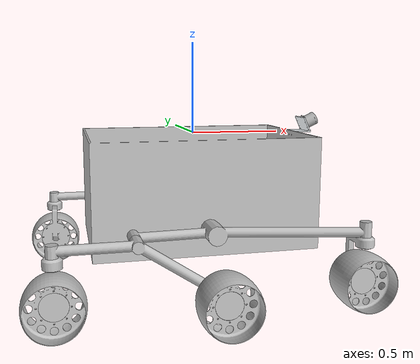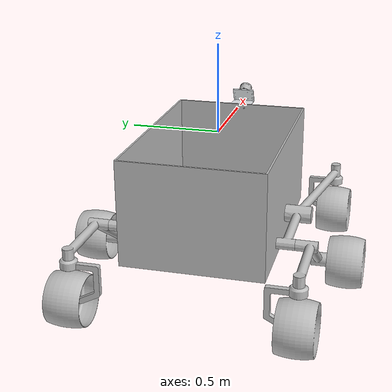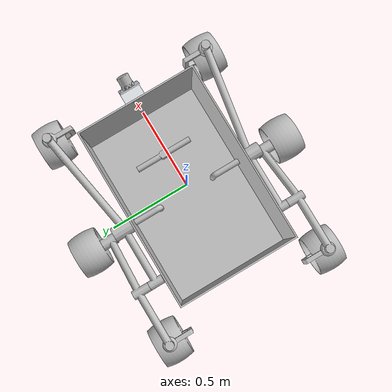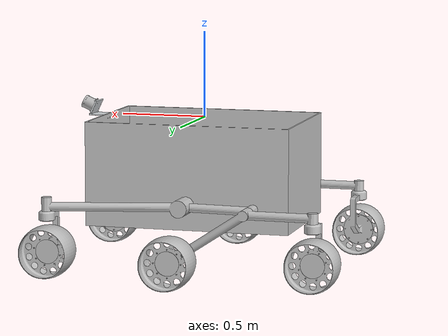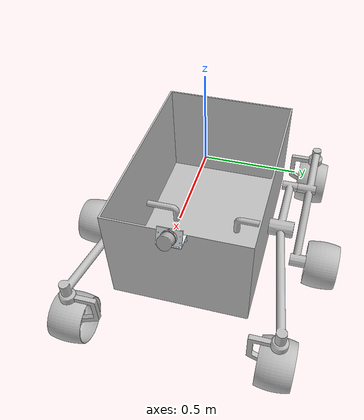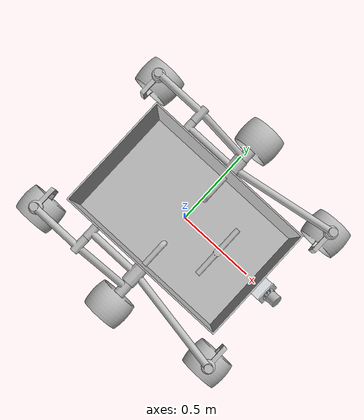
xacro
<?xml version="1.0" encoding="utf-8"?>
<robot xmlns:xacro="http://www.ros.org/wiki/xacro"  name="MarsRover">

  <xacro:include filename="$(find mars_rover_2)/urdf/MarsRover.gazebo" />
  <xacro:property name="PI" value="3.141592654" />
  <xacro:property name="LidarAngle" value="${PI/180*0}" />
  <xacro:property name="LidarName" value="PandarQT" />
  <xacro:property name="LidarDataTopicName" value="PandarQT_Data" />
  <xacro:property name="LidarHz" value="10" />
  <xacro:property name="LidarLasers" value="64" />
  <xacro:property name="LidarSamples" value="600" />
  <xacro:property name="LidarBeamVisual" value="false" />

  <link
    name="body">
    <inertial>
      <origin
        xyz="-0.00020734 5.5511E-16 -0.3822"
        rpy="0 0 0" />
      <mass
        value="32.918" />
      <inertia
        ixx="4.4731"
        ixy="2.198E-15"
        ixz="-0.00091963"
        iyy="7.3964"
        iyz="-5.1204E-16"
        izz="9.2915" />
    </inertial>
    <visual>
      <origin
        xyz="0 0 0"
        rpy="0 0 0" />
      <geometry>
        <mesh
          filename="package://mars_rover_2/meshes/rover/Body.dae" />
      </geometry>
      <material
        name="">
        <color
          rgba="0.75294 0.75294 0.75294 1" />
      </material>
    </visual>
    <collision>
      <origin
        xyz="0 0 0"
        rpy="0 0 0" />
      <geometry>
        <mesh filename="package://mars_rover_2/meshes/rover/Body.dae" />
      </geometry>
    </collision>
  </link>

  <link
    name="LiDARBodyCon">
    <inertial>
      <origin
        xyz="-0.0090907 0 -0.05047"
        rpy="0 0 0" />
      <mass
        value="0.2293" />
      <inertia
        ixx="0.0005399"
        ixy="-3.1405E-20"
        ixz="-3.3205E-05"
        iyy="0.00023526"
        iyz="1.3103E-20"
        izz="0.00035987" />
    </inertial>
    <visual>
      <origin
        xyz="0 0 0"
        rpy="0 0 0" />
      <geometry>
        <mesh
          filename="package://mars_rover_2/meshes/rover/LiDARBodyCon.dae" />
      </geometry>
      <material
        name="">
        <color
          rgba="0.89804 0.91765 0.92941 1" />
      </material>
    </visual>
    <collision>
      <origin
        xyz="0 0 0"
        rpy="0 0 0" />
      <geometry>
        <mesh
          filename="package://mars_rover_2/meshes/rover/LiDARBodyCon.dae" />
      </geometry>
    </collision>
  </link>
  <joint
    name="f_Body_LiDARBodyCon"
    type="fixed">
    <origin
      xyz="0.6825 0 0.004"
      rpy="0 1.1345 0" />
    <parent
      link="body" />
    <child
      link="LiDARBodyCon" />
    <axis
      xyz="0 0 0" />
  </joint>
  <link
    name="LiDARSupport">
    <inertial>
      <origin
        xyz="-0.03997 0 1.1102E-16"
        rpy="0 0 0" />
      <mass
        value="0.23629" />
      <inertia
        ixx="0.00032757"
        ixy="-1.5161E-19"
        ixz="1.3553E-20"
        iyy="0.00014519"
        iyz="7.7448E-21"
        izz="0.00047027" />
    </inertial>
    <visual>
      <origin
        xyz="0 0 0"
        rpy="0 0 0" />
      <geometry>
        <mesh
          filename="package://mars_rover_2/meshes/rover/LiDARSupport.dae" />
      </geometry>
      <material
        name="">
        <color
          rgba="0.89804 0.91765 0.92941 1" />
      </material>
    </visual>
    <collision>
      <origin
        xyz="0 0 0"
        rpy="0 0 0" />
      <geometry>
        <mesh
          filename="package://mars_rover_2/meshes/rover/LiDARSupport.dae" />
      </geometry>
    </collision>
  </link>
  <joint
    name="c_LiDARBodyCon_LiDARSupport"
    type="fixed"><!--revolute-->
    <origin
      xyz="0 0 0"
      rpy="0 ${LidarAngle} 0" />
    <parent
      link="LiDARBodyCon" />
    <child
      link="LiDARSupport" />
    <axis
      xyz="0 -1 0" />
    <limit
      lower="0"
      upper="0"
      effort="0"
      velocity="0" />
  </joint>
  <link
    name="${LidarName}">
    <inertial>
      <origin
        xyz="-0.00012666 -9.4208E-09 -0.012924"
        rpy="0 0 0" />
      <mass
        value="0.47584" />
      <inertia
        ixx="0.00040759"
        ixy="-1.3958E-10"
        ixz="-1.3527E-06"
        iyy="0.00040186"
        iyz="-1.5768E-10"
        izz="0.0003397" />
    </inertial>
    <visual>
      <origin
        xyz="0 0 0"
        rpy="0 0 0" />
      <geometry>
        <mesh
          filename="package://mars_rover_2/meshes/rover/LiDAR.dae" />
      </geometry>
      <material
        name="">
        <color
          rgba="0.69804 0.69804 0.69804 1" />
      </material>
    </visual>
    <collision>
      <origin
        xyz="0 0 0"
        rpy="0 0 0" />
      <geometry>
        <mesh
          filename="package://mars_rover_2/meshes/rover/LiDAR.dae" />
      </geometry>
    </collision>
  </link>
  <joint
    name="f_LiDARSupport_LiDAR"
    type="fixed">
    <origin
      xyz="-0.0375 0 0.0544"
      rpy="0 0 0" />
    <parent
      link="LiDARSupport" />
    <child
      link="${LidarName}" />
    <axis
      xyz="0 0 0" />
  </joint>

  <link
    name="DiffBar">
    <inertial>
      <origin
        xyz="-2.3069E-08 1.8739E-07 0.043691"
        rpy="0 0 0" />
      <mass
        value="0.60001" />
      <inertia
        ixx="0.0056324"
        ixy="-1.0197E-09"
        ixz="-5.914E-10"
        iyy="0.0002223"
        iyz="-2.9455E-09"
        izz="0.0055642" />
    </inertial>
    <visual>
      <origin
        xyz="0 0 0"
        rpy="0 0 0" />
      <geometry>
        <mesh
          filename="package://mars_rover_2/meshes/rover/DiffBar.dae" />
      </geometry>
      <material
        name="">
        <color
          rgba="0.75294 0.75294 0.75294 1" />
      </material>
    </visual>
    <collision>
      <origin
        xyz="0 0 0"
        rpy="0 0 0" />
      <geometry>
        <mesh
          filename="package://mars_rover_2/meshes/rover/DiffBar.dae" />
      </geometry>
    </collision>
  </link>
  <joint
    name="c_Body_DiffBar"
    type="continuous">
    <origin
      xyz="0.3 0 -0.6"
      rpy="0 0 0" />
    <parent
      link="body" />
    <child
      link="DiffBar" />
    <axis
      xyz="0 0 -1" />
  </joint>

  <link
    name="RightMainRocket">
    <inertial>
      <origin
        xyz="0.11317 -0.083287 -0.0033099"
        rpy="0 0 0" />
      <mass
        value="3.9698" />
      <inertia
        ixx="0.029658"
        ixy="0.058353"
        ixz="-6.7156E-05"
        iyy="0.40048"
        iyz="0.0010399"
        izz="0.42705" />
    </inertial>
    <visual>
      <origin
        xyz="0 0 0"
        rpy="0 0 0" />
      <geometry>
        <mesh
          filename="package://mars_rover_2/meshes/rover/RightMainRocket.dae" />
      </geometry>
      <material
        name="">
        <color
          rgba="0.75294 0.75294 0.75294 1" />
      </material>
    </visual>
    <collision>
      <origin
        xyz="0 0 0"
        rpy="0 0 0" />
      <geometry>
        <mesh
          filename="package://mars_rover_2/meshes/rover/RightMainRocket.dae" />
      </geometry>
    </collision>
  </link>
  <joint
    name="c_Body_RightMainRocket"
    type="continuous">
    <origin
      xyz="0 -0.4 -0.455"
      rpy="0 0 0" />
    <parent
      link="body" />
    <child
      link="RightMainRocket" />
    <axis
      xyz="0 -1 0" />
  </joint>
  <link
    name="BogieRF">
    <inertial>
      <origin
        xyz="1.1102E-16 0.043694 -0.10834"
        rpy="0 0 0" />
      <mass
        value="0.97559" />
      <inertia
        ixx="0.012957"
        ixy="5.7596E-19"
        ixz="7.2649E-18"
        iyy="0.0096917"
        iyz="0.00058661"
        izz="0.0043433" />
    </inertial>
    <visual>
      <origin
        xyz="0 0 0"
        rpy="0 0 0" />
      <geometry>
        <mesh
          filename="package://mars_rover_2/meshes/rover/BogieRF.dae" />
      </geometry>
      <material
        name="">
        <color
          rgba="0.75294 0.75294 0.75294 1" />
      </material>
    </visual>
    <collision>
      <origin
        xyz="0 0 0"
        rpy="0 0 0" />
      <geometry>
        <mesh
          filename="package://mars_rover_2/meshes/rover/BogieRF.dae" />
      </geometry>
    </collision>
  </link>
  <joint
    name="c_RightMainRocket_BogieRF"
    type="continuous">
    <origin
      xyz="0.76252 -0.2 -0.035"
      rpy="0 0 0" />
    <parent
      link="RightMainRocket" />
    <child
      link="BogieRF" />
    <axis
      xyz="0 0 -1" />
  </joint>
  <link
    name="WheelRF">
    <inertial>
      <origin
        xyz="8.8818E-16 0 -2.3315E-15"
        rpy="0 0 0" />
      <mass
        value="0.78656" />
      <inertia
        ixx="0.009468"
        ixy="1.973E-20"
        ixz="-7.0807E-18"
        iyy="0.015284"
        iyz="-1.8111E-18"
        izz="0.009468" />
    </inertial>
    <visual>
      <origin
        xyz="0 0 0"
        rpy="0 0 0" />
      <geometry>
        <mesh
          filename="package://mars_rover_2/meshes/rover/WheelRF.dae" />
      </geometry>
      <material
        name="">
        <color
          rgba="0.75294 0.75294 0.75294 1" />
      </material>
    </visual>
    <collision>
      <origin
        xyz="0 0 0"
        rpy="0 0 0" />
      <geometry>
        <mesh
          filename="package://mars_rover_2/meshes/rover/WheelRF.dae" />
      </geometry>
    </collision>
  </link>
  <joint
    name="c_BogieRF_WheelRF"
    type="continuous">
    <origin
      xyz="0 0 -0.235"
      rpy="0 0 0" />
    <parent
      link="BogieRF" />
    <child
      link="WheelRF" />
    <axis
      xyz="0 1 0" />
  </joint>
  <link
    name="RightViceRocket">
    <inertial>
      <origin
        xyz="0.14469 -0.10519 -0.13316"
        rpy="0 0 0" />
      <mass
        value="3.1788" />
      <inertia
        ixx="0.057106"
        ixy="0.024643"
        ixz="0.091961"
        iyy="0.26287"
        iyz="-0.013339"
        izz="0.22749" />
    </inertial>
    <visual>
      <origin
        xyz="0 0 0"
        rpy="0 0 0" />
      <geometry>
        <mesh
          filename="package://mars_rover_2/meshes/rover/RightViceRocket.dae" />
      </geometry>
      <material
        name="">
        <color
          rgba="0.75294 0.75294 0.75294 1" />
      </material>
    </visual>
    <collision>
      <origin
        xyz="0 0 0"
        rpy="0 0 0" />
      <geometry>
        <mesh
          filename="package://mars_rover_2/meshes/rover/RightViceRocket.dae" />
      </geometry>
    </collision>
  </link>
  <joint
    name="c_RightMainRocket_RightViceRocket"
    type="continuous">
    <origin
      xyz="-0.4 -0.12 -0.005"
      rpy="0 0 0" />
    <parent
      link="RightMainRocket" />
    <child
      link="RightViceRocket" />
    <axis
      xyz="0 -1 0" />
  </joint>
  <link
    name="WheelRM">
    <inertial>
      <origin
        xyz="2.387E-15 -5.9952E-15 2.2204E-16"
        rpy="0 0 0" />
      <mass
        value="0.78656" />
      <inertia
        ixx="0.009468"
        ixy="6.6562E-22"
        ixz="2.2238E-18"
        iyy="0.015284"
        iyz="7.6463E-22"
        izz="0.009468" />
    </inertial>
    <visual>
      <origin
        xyz="0 0 0"
        rpy="0 0 0" />
      <geometry>
        <mesh
          filename="package://mars_rover_2/meshes/rover/WheelRM.dae" />
      </geometry>
      <material
        name="">
        <color
          rgba="0.75294 0.75294 0.75294 1" />
      </material>
    </visual>
    <collision>
      <origin
        xyz="0 0 0"
        rpy="0 0 0" />
      <geometry>
        <mesh
          filename="package://mars_rover_2/meshes/rover/WheelRM.dae" />
      </geometry>
    </collision>
  </link>
  <joint
    name="c_RightViceRocket_WheelRM"
    type="continuous">
    <origin
      xyz="0.4 -0.239 -0.265"
      rpy="0 0 0" />
    <parent
      link="RightViceRocket" />
    <child
      link="WheelRM" />
    <axis
      xyz="0 1 0" />
  </joint>
  <link
    name="BogieRR">
    <inertial>
      <origin
        xyz="0 0.043694 -0.10834"
        rpy="0 0 0" />
      <mass
        value="0.97559" />
      <inertia
        ixx="0.012957"
        ixy="1.5156E-18"
        ixz="5.1012E-18"
        iyy="0.0096917"
        iyz="0.00058661"
        izz="0.0043433" />
    </inertial>
    <visual>
      <origin
        xyz="0 0 0"
        rpy="0 0 0" />
      <geometry>
        <mesh
          filename="package://mars_rover_2/meshes/rover/BogieRR.dae" />
      </geometry>
      <material
        name="">
        <color
          rgba="0.75294 0.75294 0.75294 1" />
      </material>
    </visual>
    <collision>
      <origin
        xyz="0 0 0"
        rpy="0 0 0" />
      <geometry>
        <mesh
          filename="package://mars_rover_2/meshes/rover/BogieRR.dae" />
      </geometry>
    </collision>
  </link>
  <joint
    name="c_RightViceRocket_BogieRR"
    type="continuous">
    <origin
      xyz="-0.388 -0.08 -0.03"
      rpy="0 0 0" />
    <parent
      link="RightViceRocket" />
    <child
      link="BogieRR" />
    <axis
      xyz="0 0 -1" />
  </joint>
  <link
    name="WheelRR">
    <inertial>
      <origin
        xyz="2.4425E-15 2.2204E-16 4.4409E-16"
        rpy="0 0 0" />
      <mass
        value="0.78656" />
      <inertia
        ixx="0.009468"
        ixy="1.3111E-18"
        ixz="2.4375E-18"
        iyy="0.015284"
        iyz="-7.9413E-19"
        izz="0.009468" />
    </inertial>
    <visual>
      <origin
        xyz="0 0 0"
        rpy="0 0 0" />
      <geometry>
        <mesh
          filename="package://mars_rover_2/meshes/rover/WheelRR.dae" />
      </geometry>
      <material
        name="">
        <color
          rgba="0.75294 0.75294 0.75294 1" />
      </material>
    </visual>
    <collision>
      <origin
        xyz="0 0 0"
        rpy="0 0 0" />
      <geometry>
        <mesh
          filename="package://mars_rover_2/meshes/rover/WheelRR.dae" />
      </geometry>
    </collision>
  </link>
  <joint
    name="c_BogieRR_WheelRR"
    type="continuous">
    <origin
      xyz="0 0 -0.235"
      rpy="0 0 0" />
    <parent
      link="BogieRR" />
    <child
      link="WheelRR" />
    <axis
      xyz="0 1 0" />
  </joint>
  <link
    name="LeftMainRocket">
    <inertial>
      <origin
        xyz="0.11317 0.083287 -0.0033099"
        rpy="0 0 0" />
      <mass
        value="3.9698" />
      <inertia
        ixx="0.029658"
        ixy="-0.058353"
        ixz="-6.7156E-05"
        iyy="0.40048"
        iyz="-0.0010399"
        izz="0.42705" />
    </inertial>
    <visual>
      <origin
        xyz="0 0 0"
        rpy="0 0 0" />
      <geometry>
        <mesh
          filename="package://mars_rover_2/meshes/rover/LeftMainRocket.dae" />
      </geometry>
      <material
        name="">
        <color
          rgba="0.75294 0.75294 0.75294 1" />
      </material>
    </visual>
    <collision>
      <origin
        xyz="0 0 0"
        rpy="0 0 0" />
      <geometry>
        <mesh
          filename="package://mars_rover_2/meshes/rover/LeftMainRocket.dae" />
      </geometry>
    </collision>
  </link>
  <joint
    name="c_Body_LeftMainRocket"
    type="continuous">
    <origin
      xyz="0 0.4 -0.455"
      rpy="0 0 0" />
    <parent
      link="body" />
    <child
      link="LeftMainRocket" />
    <axis
      xyz="0 1 0" />
  </joint>
  <link
    name="BogieLF">
    <inertial>
      <origin
        xyz="-1.0103E-14 -0.043694 -0.10834"
        rpy="0 0 0" />
      <mass
        value="0.97559" />
      <inertia
        ixx="0.012957"
        ixy="-7.4927E-16"
        ixz="-1.4026E-16"
        iyy="0.0096917"
        iyz="-0.00058661"
        izz="0.0043433" />
    </inertial>
    <visual>
      <origin
        xyz="0 0 0"
        rpy="0 0 0" />
      <geometry>
        <mesh
          filename="package://mars_rover_2/meshes/rover/BogieLF.dae" />
      </geometry>
      <material
        name="">
        <color
          rgba="0.75294 0.75294 0.75294 1" />
      </material>
    </visual>
    <collision>
      <origin
        xyz="0 0 0"
        rpy="0 0 0" />
      <geometry>
        <mesh
          filename="package://mars_rover_2/meshes/rover/BogieLF.dae" />
      </geometry>
    </collision>
  </link>
  <joint
    name="c_LeftMainRocket_BogieLF"
    type="continuous">
    <origin
      xyz="0.76252 0.2 -0.035"
      rpy="0 0 0" />
    <parent
      link="LeftMainRocket" />
    <child
      link="BogieLF" />
    <axis
      xyz="0 0 -1" />
  </joint>
  <link
    name="WheelLF">
    <inertial>
      <origin
        xyz="-2.609E-15 -9.8532E-16 -2.2204E-16"
        rpy="0 0 0" />
      <mass
        value="0.78656" />
      <inertia
        ixx="0.009468"
        ixy="4.9247E-16"
        ixz="1.8014E-18"
        iyy="0.015284"
        iyz="4.3225E-16"
        izz="0.009468" />
    </inertial>
    <visual>
      <origin
        xyz="0 0 0"
        rpy="0 0 0" />
      <geometry>
        <mesh
          filename="package://mars_rover_2/meshes/rover/WheelLF.dae" />
      </geometry>
      <material
        name="">
        <color
          rgba="0.75294 0.75294 0.75294 1" />
      </material>
    </visual>
    <collision>
      <origin
        xyz="0 0 0"
        rpy="0 0 0" />
      <geometry>
        <mesh
          filename="package://mars_rover_2/meshes/rover/WheelLF.dae" />
      </geometry>
    </collision>
  </link>
  <joint
    name="c_BogieLF_WheelLF"
    type="continuous">
    <origin
      xyz="0 0 -0.235"
      rpy="0 0 0" />
    <parent
      link="BogieLF" />
    <child
      link="WheelLF" />
    <axis
      xyz="0 -1 0" />
  </joint>
  <link
    name="LeftViceRocket">
    <inertial>
      <origin
        xyz="0.14469 0.10519 -0.13316"
        rpy="0 0 0" />
      <mass
        value="3.1787" />
      <inertia
        ixx="0.057103"
        ixy="-0.024643"
        ixz="0.091959"
        iyy="0.26287"
        iyz="0.013339"
        izz="0.22749" />
    </inertial>
    <visual>
      <origin
        xyz="0 0 0"
        rpy="0 0 0" />
      <geometry>
        <mesh
          filename="package://mars_rover_2/meshes/rover/LeftViceRocket.dae" />
      </geometry>
      <material
        name="">
        <color
          rgba="0.75294 0.75294 0.75294 1" />
      </material>
    </visual>
    <collision>
      <origin
        xyz="0 0 0"
        rpy="0 0 0" />
      <geometry>
        <mesh
          filename="package://mars_rover_2/meshes/rover/LeftViceRocket.dae" />
      </geometry>
    </collision>
  </link>
  <joint
    name="c_LeftMainRocket_LeftViceRocket"
    type="continuous">
    <origin
      xyz="-0.4 0.12 -0.005"
      rpy="0 0 0" />
    <parent
      link="LeftMainRocket" />
    <child
      link="LeftViceRocket" />
    <axis
      xyz="0 1 0" />
  </joint>
  <link
    name="WheelLM">
    <inertial>
      <origin
        xyz="2.5535E-15 -1.0825E-15 -4.4409E-16"
        rpy="0 0 0" />
      <mass
        value="0.78656" />
      <inertia
        ixx="0.009468"
        ixy="1.1249E-17"
        ixz="-2.2339E-18"
        iyy="0.015284"
        iyz="-1.6612E-18"
        izz="0.009468" />
    </inertial>
    <visual>
      <origin
        xyz="0 0 0"
        rpy="0 0 0" />
      <geometry>
        <mesh
          filename="package://mars_rover_2/meshes/rover/WheelLM.dae" />
      </geometry>
      <material
        name="">
        <color
          rgba="0.75294 0.75294 0.75294 1" />
      </material>
    </visual>
    <collision>
      <origin
        xyz="0 0 0"
        rpy="0 0 0" />
      <geometry>
        <mesh
          filename="package://mars_rover_2/meshes/rover/WheelLM.dae" />
      </geometry>
    </collision>
  </link>
  <joint
    name="c_LeftViceRocket_WheelLM"
    type="continuous">
    <origin
      xyz="0.4 0.239 -0.265"
      rpy="0 0 0" />
    <parent
      link="LeftViceRocket" />
    <child
      link="WheelLM" />
    <axis
      xyz="0 -1 0" />
  </joint>
  <link
    name="BogieLR">
    <inertial>
      <origin
        xyz="0 -0.043694 -0.10834"
        rpy="0 0 0" />
      <mass
        value="0.97559" />
      <inertia
        ixx="0.012957"
        ixy="1.5794E-18"
        ixz="-5.1731E-18"
        iyy="0.0096917"
        iyz="-0.00058661"
        izz="0.0043433" />
    </inertial>
    <visual>
      <origin
        xyz="0 0 0"
        rpy="0 0 0" />
      <geometry>
        <mesh
          filename="package://mars_rover_2/meshes/rover/BogieLR.dae" />
      </geometry>
      <material
        name="">
        <color
          rgba="0.75294 0.75294 0.75294 1" />
      </material>
    </visual>
    <collision>
      <origin
        xyz="0 0 0"
        rpy="0 0 0" />
      <geometry>
        <mesh
          filename="package://mars_rover_2/meshes/rover/BogieLR.dae" />
      </geometry>
    </collision>
  </link>
  <joint
    name="c_LeftViceRocket_BogieLR"
    type="continuous">
    <origin
      xyz="-0.388 0.08 -0.03"
      rpy="0 0 0" />
    <parent
      link="LeftViceRocket" />
    <child
      link="BogieLR" />
    <axis
      xyz="0 0 -1" />
  </joint>
  <link
    name="WheelLR">
    <inertial>
      <origin
        xyz="2.4425E-15 -1.3878E-17 7.7716E-16"
        rpy="0 0 0" />
      <mass
        value="0.78656" />
      <inertia
        ixx="0.009468"
        ixy="6.2539E-18"
        ixz="3.9328E-18"
        iyy="0.015284"
        iyz="1.8192E-18"
        izz="0.009468" />
    </inertial>
    <visual>
      <origin
        xyz="0 0 0"
        rpy="0 0 0" />
      <geometry>
        <mesh
          filename="package://mars_rover_2/meshes/rover/WheelLR.dae" />
      </geometry>
      <material
        name="">
        <color
          rgba="0.75294 0.75294 0.75294 1" />
      </material>
    </visual>
    <collision>
      <origin
        xyz="0 0 0"
        rpy="0 0 0" />
      <geometry>
        <mesh
          filename="package://mars_rover_2/meshes/rover/WheelLR.dae" />
      </geometry>
    </collision>
  </link>
  <joint
    name="c_BogieLR_WheelLR"
    type="continuous">
    <origin
      xyz="0 0 -0.235"
      rpy="0 0 0" />
    <parent
      link="BogieLR" />
    <child
      link="WheelLR" />
    <axis
      xyz="0 -1 0" />
  </joint>

  <xacro:include filename="$(find mars_rover_2)/urdf/Sensors.xacro"/>
  <xacro:PandarQT link="${LidarName}" topic="${LidarDataTopicName}" hz="${LidarHz}" lasers="${LidarLasers}" samples="${LidarSamples}" visual="${LidarBeamVisual}"></xacro:PandarQT>
  <xacro:IMU link="${LidarName}" pitch="${0}" gaussianNoise="0.0"></xacro:IMU>

</robot>
